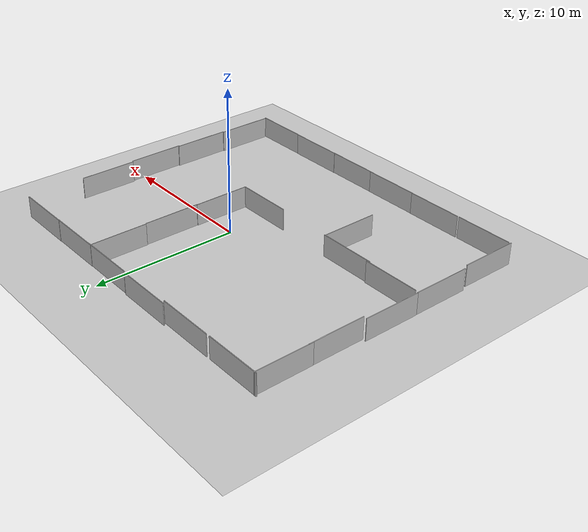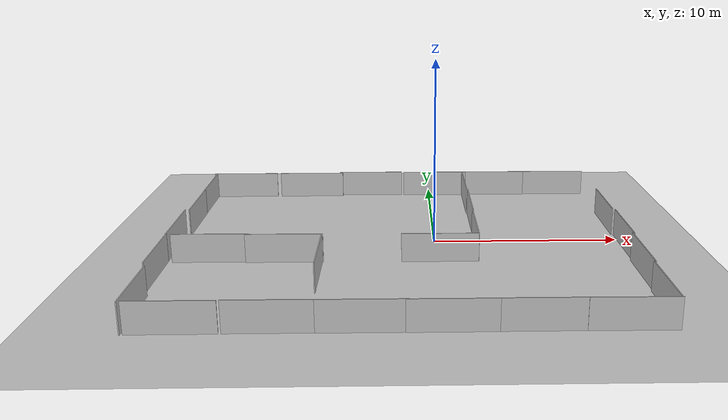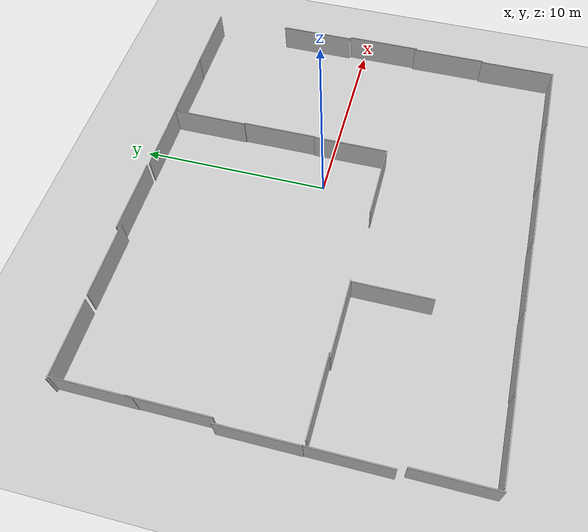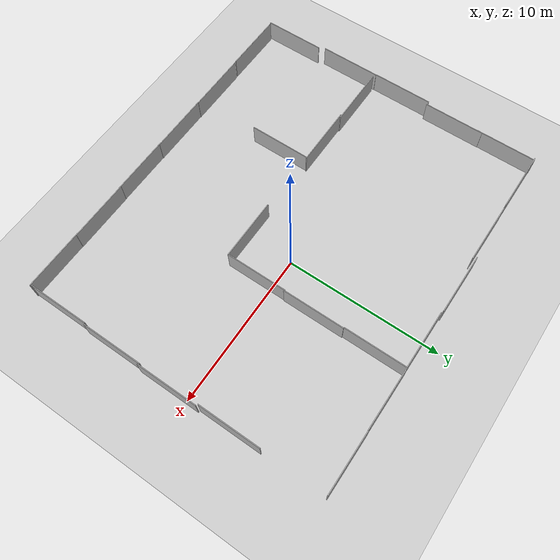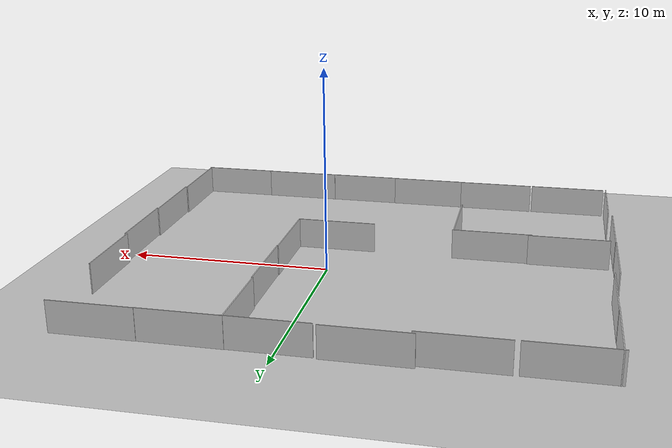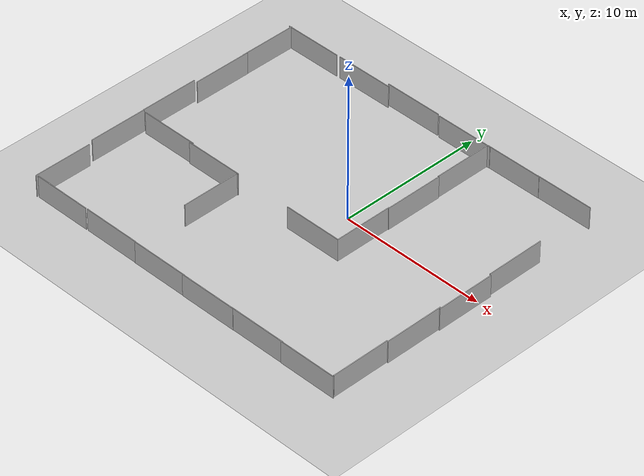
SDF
<sdf version="1.6">
 <world name="default">
  <light name="sun" type="directional">
   <pose>0 0 10 0 -0 0</pose>
   <diffuse>0.8 0.8 0.8 1</diffuse>
   <specular>0.2 0.2 0.2 1</specular>
   <attenuation>
    <range>1000</range>
    <constant>0.9</constant>
    <linear>0.01</linear>
    <quadratic>0.001</quadratic>
   </attenuation>
   <direction>-0.5 0.1 -0.9</direction>
  </light>
  <model name="ground_plane">
   <static>1</static>
   <link name="link">
    <collision name="collision">
     <geometry><plane><normal>0 0 1</normal><size>100 100</size></plane></geometry>
     <surface><friction><ode><mu>100</mu><mu2>50</mu2></ode></friction></surface>
    </collision>
    <visual name="visual">
     <cast_shadows>0</cast_shadows>
     <geometry><plane><normal>0 0 1</normal><size>100 100</size></plane></geometry>
     <material>
      <script><uri>file://media/materials/scripts/gazebo.material</uri><name>Gazebo/Grey</name></script>
     </material>
    </visual>
   </link>
  </model>
  <gravity>0 0 -9.8</gravity>
  <magnetic_field>6e-06 2.3e-05 -4.2e-05</magnetic_field>
  <atmosphere type="adiabatic"/>
  <physics name="default_physics" default="0" type="ode">
   <max_step_size>0.001</max_step_size>
   <real_time_factor>1</real_time_factor>
   <real_time_update_rate>1000</real_time_update_rate>
  </physics>
  <scene><ambient>0.4 0.4 0.4 1</ambient><background>0.7 0.7 0.7 1</background><shadows>1</shadows></scene>
  <spherical_coordinates>
   <surface_model>EARTH_WGS84</surface_model>
   <latitude_deg>0</latitude_deg>
   <longitude_deg>0</longitude_deg>
   <elevation>0</elevation>
   <heading_deg>0</heading_deg>
  </spherical_coordinates>
  <model name="wall4">
   <static>1</static>
   <link name="wall1">
    <collision name="collision"><geometry><box><size>4 0.05 3</size></box></geometry></collision>
    <visual name="visual"><geometry><box><size>4 0.05 3</size></box></geometry></visual>
   </link>
   <pose>7.99325 9.02112 0 0 -0 0</pose>
  </model>
  <model name="wall4_0">
   <static>1</static>
   <link name="wall1">
    <collision name="collision"><geometry><box><size>4 0.05 3</size></box></geometry></collision>
    <visual name="visual"><geometry><box><size>4 0.05 3</size></box></geometry></visual>
   </link>
   <pose>4.14043 9.00365 0 0 -0 0</pose>
  </model>
  <model name="wall4_1">
   <static>1</static>
   <link name="wall1">
    <pose>0 0 0 0 -0 1.57</pose>
    <collision name="collision"><geometry><box><size>4 0.05 3</size></box></geometry></collision>
    <visual name="visual"><geometry><box><size>4 0.05 3</size></box></geometry></visual>
   </link>
   <pose>2.14782 6.99235 0 0 -0 0</pose>
  </model>
  <model name="wall4_1_clone">
   <static>1</static>
   <link name="wall1">
    <pose>0 0 0 0 -0 1.57</pose>
    <collision name="collision"><geometry><box><size>4 0.05 3</size></box></geometry></collision>
    <visual name="visual"><geometry><box><size>4 0.05 3</size></box></geometry></visual>
   </link>
   <pose>2.19369 2.99182 0 0 -0 0</pose>
  </model>
  <model name="wall4_1_clone_0">
   <static>1</static>
   <link name="wall1">
    <pose>0 0 0 0 -0 1.57</pose>
    <collision name="collision"><geometry><box><size>4 0.05 3</size></box></geometry></collision>
    <visual name="visual"><geometry><box><size>4 0.05 3</size></box></geometry></visual>
   </link>
   <pose>2.14986 -0.945699 0 0 -0 0</pose>
  </model>
  <model name="wall4_0_clone">
   <static>1</static>
   <link name="wall1">
    <collision name="collision"><geometry><box><size>4 0.05 3</size></box></geometry></collision>
    <visual name="visual"><geometry><box><size>4 0.05 3</size></box></geometry></visual>
   </link>
   <pose>0.16045 -2.92084 0 0 -0 0</pose>
  </model>
  <model name="wall4_0_clone_1">
   <static>1</static>
   <link name="wall1">
    <collision name="collision"><geometry><box><size>4 0.05 3</size></box></geometry></collision>
    <visual name="visual"><geometry><box><size>4 0.05 3</size></box></geometry></visual>
   </link>
   <pose>-7.85511 -2.86351 0 0 -0 0</pose>
  </model>
  <model name="wall4_1_clone_1">
   <static>1</static>
   <link name="wall1">
    <pose>0 0 0 0 -0 1.57</pose>
    <collision name="collision"><geometry><box><size>4 0.05 3</size></box></geometry></collision>
    <visual name="visual"><geometry><box><size>4 0.05 3</size></box></geometry></visual>
   </link>
   <pose>10.0133 2.93547 0 0 -0 0</pose>
  </model>
  <model name="wall4_1_clone_2">
   <static>1</static>
   <link name="wall1">
    <pose>0 0 0 0 -0 1.57</pose>
    <collision name="collision"><geometry><box><size>4 0.05 3</size></box></geometry></collision>
    <visual name="visual"><geometry><box><size>4 0.05 3</size></box></geometry></visual>
   </link>
   <pose>10.1246 -1.10721 0 0 -0 0</pose>
  </model>
  <model name="wall4_1_clone_3">
   <static>1</static>
   <link name="wall1">
    <pose>0 0 0 0 -0 1.57</pose>
    <collision name="collision"><geometry><box><size>4 0.05 3</size></box></geometry></collision>
    <visual name="visual"><geometry><box><size>4 0.05 3</size></box></geometry></visual>
   </link>
   <pose>10.0383 -4.98298 0 0 -0 0</pose>
  </model>
  <model name="wall4_1_clone_4">
   <static>1</static>
   <link name="wall1">
    <pose>0 0 0 0 -0 1.57</pose>
    <collision name="collision"><geometry><box><size>4 0.05 3</size></box></geometry></collision>
    <visual name="visual"><geometry><box><size>4 0.05 3</size></box></geometry></visual>
   </link>
   <pose>9.95233 -8.95366 0 0 -0 0</pose>
  </model>
  <model name="wall4_0_clone_clone">
   <static>1</static>
   <link name="wall1">
    <collision name="collision"><geometry><box><size>4 0.05 3</size></box></geometry></collision>
    <visual name="visual"><geometry><box><size>4 0.05 3</size></box></geometry></visual>
   </link>
   <pose>8.02193 -11.0267 0 0 -0 0</pose>
  </model>
  <model name="wall4_0_clone_clone_0">
   <static>1</static>
   <link name="wall1">
    <collision name="collision"><geometry><box><size>4 0.05 3</size></box></geometry></collision>
    <visual name="visual"><geometry><box><size>4 0.05 3</size></box></geometry></visual>
   </link>
   <pose>4.15155 -11.0081 0 0 -0 0</pose>
  </model>
  <model name="wall4_0_clone_clone_1">
   <static>1</static>
   <link name="wall1">
    <collision name="collision"><geometry><box><size>4 0.05 3</size></box></geometry></collision>
    <visual name="visual"><geometry><box><size>4 0.05 3</size></box></geometry></visual>
   </link>
   <pose>0.312729 -11.0226 0 0 -0 0</pose>
  </model>
  <model name="wall4_0_clone_clone_2">
   <static>1</static>
   <link name="wall1">
    <collision name="collision"><geometry><box><size>4 0.05 3</size></box></geometry></collision>
    <visual name="visual"><geometry><box><size>4 0.05 3</size></box></geometry></visual>
   </link>
   <pose>-3.52505 -11.004 0 0 -0 0</pose>
  </model>
  <model name="wall4_0_clone_clone_3">
   <static>1</static>
   <link name="wall1">
    <collision name="collision"><geometry><box><size>4 0.05 3</size></box></geometry></collision>
    <visual name="visual"><geometry><box><size>4 0.05 3</size></box></geometry></visual>
   </link>
   <pose>-7.45985 -10.9858 0 0 -0 0</pose>
  </model>
  <model name="wall4_0_clone_clone_4">
   <static>1</static>
   <link name="wall1">
    <collision name="collision"><geometry><box><size>4 0.05 3</size></box></geometry></collision>
    <visual name="visual"><geometry><box><size>4 0.05 3</size></box></geometry></visual>
   </link>
   <pose>-11.643 -2.784 0 0 -0 0</pose>
  </model>
  <model name="wall4_0_clone_clone_5">
   <static>1</static>
   <link name="wall1">
    <collision name="collision"><geometry><box><size>4 0.05 3</size></box></geometry></collision>
    <visual name="visual"><geometry><box><size>4 0.05 3</size></box></geometry></visual>
   </link>
   <pose>0.366546 8.98429 0 0 -0 0</pose>
  </model>
  <model name="wall4_0_clone_clone_6">
   <static>1</static>
   <link name="wall1">
    <collision name="collision"><geometry><box><size>4 0.05 3</size></box></geometry></collision>
    <visual name="visual"><geometry><box><size>4 0.05 3</size></box></geometry></visual>
   </link>
   <pose>-3.77972 9.05126 0 0 -0 0</pose>
  </model>
  <model name="wall4_0_clone_clone_7">
   <static>1</static>
   <link name="wall1">
    <collision name="collision"><geometry><box><size>4 0.05 3</size></box></geometry></collision>
    <visual name="visual"><geometry><box><size>4 0.05 3</size></box></geometry></visual>
   </link>
   <pose>-7.58579 8.86704 0 0 -0 0</pose>
  </model>
  <model name="wall4_0_clone_clone_8">
   <static>1</static>
   <link name="wall1">
    <collision name="collision"><geometry><box><size>4 0.05 3</size></box></geometry></collision>
    <visual name="visual"><geometry><box><size>4 0.05 3</size></box></geometry></visual>
   </link>
   <pose>-11.8144 8.8499 0 0 -0 0</pose>
  </model>
  <model name="wall4_0_clone_clone_9">
   <static>1</static>
   <link name="wall1">
    <collision name="collision"><geometry><box><size>4 0.05 3</size></box></geometry></collision>
    <visual name="visual"><geometry><box><size>4 0.05 3</size></box></geometry></visual>
   </link>
   <pose>-11.5636 -11.0032 0 0 -0 0</pose>
  </model>
  <model name="wall4_1_clone_5">
   <static>1</static>
   <link name="wall1">
    <pose>0 0 0 0 -0 1.57</pose>
    <collision name="collision"><geometry><box><size>4 0.05 3</size></box></geometry></collision>
    <visual name="visual"><geometry><box><size>4 0.05 3</size></box></geometry></visual>
   </link>
   <pose>-5.92475 -4.90338 0 0 -0 0</pose>
  </model>
  <model name="wall4_1_clone_6">
   <static>1</static>
   <link name="wall1">
    <pose>0 0 0 0 -0 1.57</pose>
    <collision name="collision"><geometry><box><size>4 0.05 3</size></box></geometry></collision>
    <visual name="visual"><geometry><box><size>4 0.05 3</size></box></geometry></visual>
   </link>
   <pose>-13.6655 6.8979 0 0 -0 0</pose>
  </model>
  <model name="wall4_1_clone_7">
   <static>1</static>
   <link name="wall1">
    <pose>0 0 0 0 -0 1.57</pose>
    <collision name="collision"><geometry><box><size>4 0.05 3</size></box></geometry></collision>
    <visual name="visual"><geometry><box><size>4 0.05 3</size></box></geometry></visual>
   </link>
   <pose>-13.6514 3.26301 0 0 -0 0</pose>
  </model>
  <model name="wall4_1_clone_8">
   <static>1</static>
   <link name="wall1">
    <pose>0 0 0 0 -0 1.57</pose>
    <collision name="collision"><geometry><box><size>4 0.05 3</size></box></geometry></collision>
    <visual name="visual"><geometry><box><size>4 0.05 3</size></box></geometry></visual>
   </link>
   <pose>-13.8896 -0.709625 0 0 -0 0</pose>
  </model>
  <model name="wall4_1_clone_9">
   <static>1</static>
   <link name="wall1">
    <pose>0 0 0 0 -0 1.57</pose>
    <collision name="collision"><geometry><box><size>4 0.05 3</size></box></geometry></collision>
    <visual name="visual"><geometry><box><size>4 0.05 3</size></box></geometry></visual>
   </link>
   <pose>-13.872 -4.6809 0 0 -0 0</pose>
  </model>
  <model name="wall4_1_clone_10">
   <static>1</static>
   <link name="wall1">
    <pose>0 0 0 0 -0 1.57</pose>
    <collision name="collision"><geometry><box><size>4 0.05 3</size></box></geometry></collision>
    <visual name="visual"><geometry><box><size>4 0.05 3</size></box></geometry></visual>
   </link>
   <pose>-13.6854 -9.0687 0 0 -0 0</pose>
  </model>
 </world>
</sdf>
